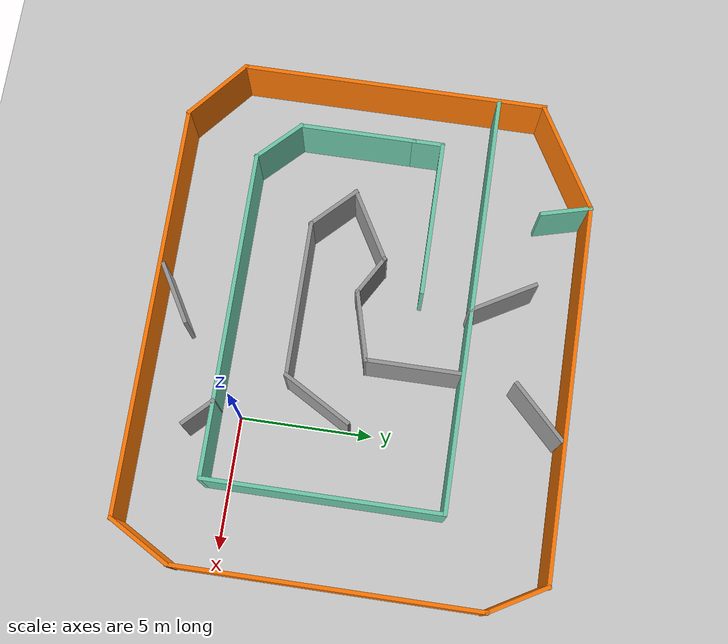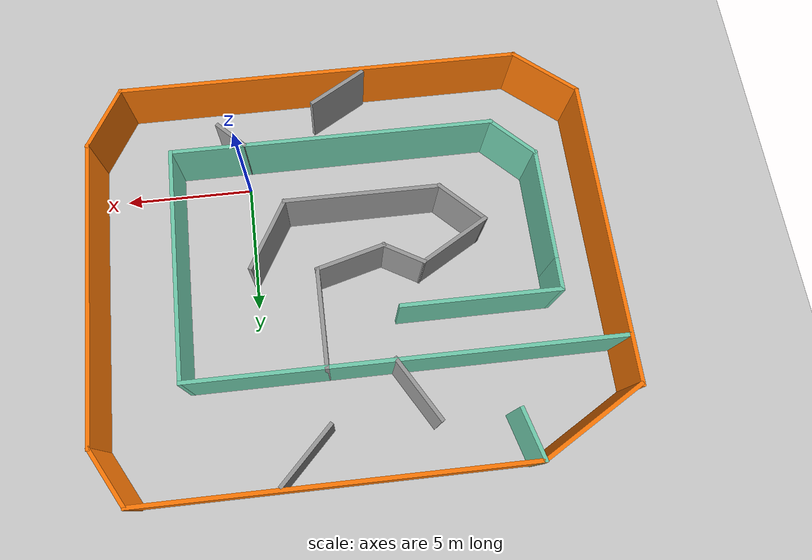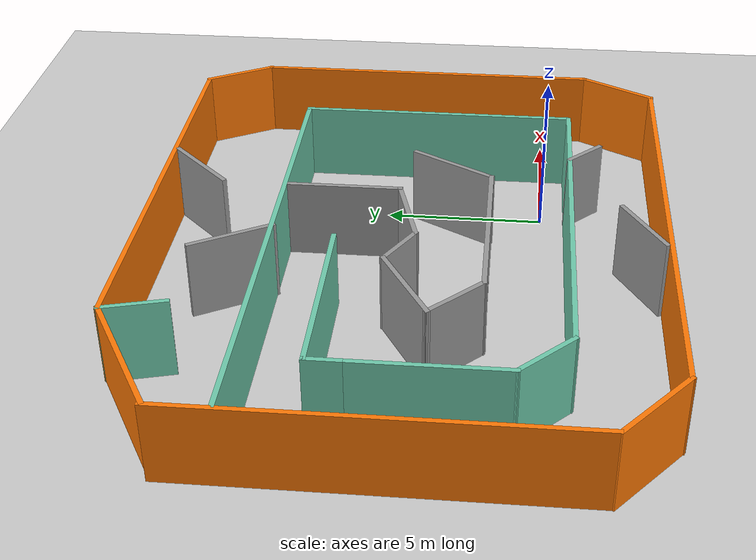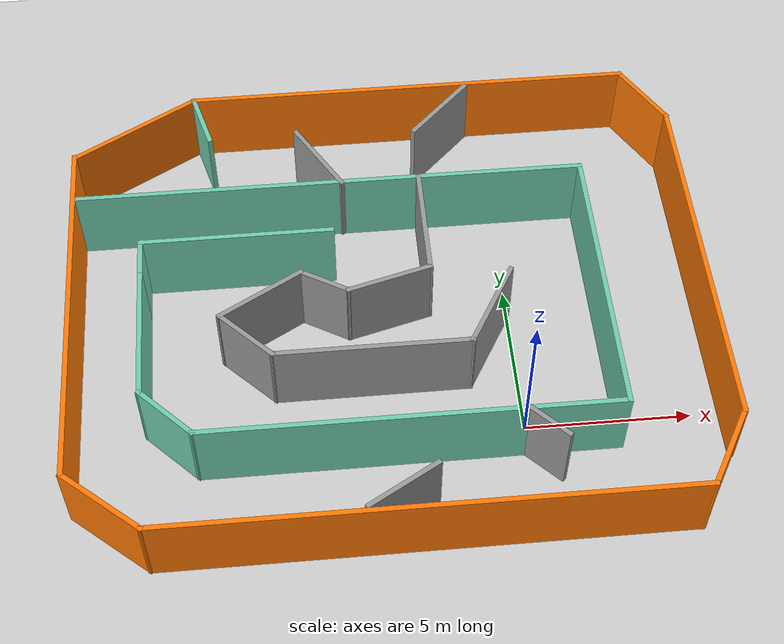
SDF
<sdf version="1.6">
 <world name="default">
  <light name="sun" type="directional">
   <pose>0 0 10 0 -0 0</pose>
   <diffuse>0.8 0.8 0.8 1</diffuse>
   <specular>0.1 0.1 0.1 1</specular>
   <attenuation>
    <range>1000</range>
    <constant>0.9</constant>
    <linear>0.01</linear>
    <quadratic>0.001</quadratic>
   </attenuation>
   <direction>-0.5 0.5 -1</direction>
  </light>
  <model name="ground_plane">
   <static>1</static>
   <link name="link">
    <collision name="collision">
     <geometry><plane><normal>0 0 1</normal><size>100 100</size></plane></geometry>
     <surface><friction><ode><mu>100</mu><mu2>50</mu2></ode></friction></surface>
    </collision>
    <visual name="visual">
     <cast_shadows>0</cast_shadows>
     <geometry><plane><normal>0 0 1</normal><size>100 100</size></plane></geometry>
     <material>
      <script><uri>file://media/materials/scripts/gazebo.material</uri><name>Gazebo/Grey</name></script>
     </material>
    </visual>
   </link>
  </model>
  <gravity>0 0 -9.8</gravity>
  <magnetic_field>6e-06 2.3e-05 -4.2e-05</magnetic_field>
  <atmosphere type="adiabatic"/>
  <physics name="default_physics" default="0" type="ode">
   <max_step_size>0.001</max_step_size>
   <real_time_factor>1</real_time_factor>
   <real_time_update_rate>1000</real_time_update_rate>
  </physics>
  <scene><ambient>0.4 0.4 0.4 1</ambient><background>0.7 0.7 0.7 1</background><shadows>1</shadows></scene>
  <spherical_coordinates>
   <surface_model>EARTH_WGS84</surface_model>
   <latitude_deg>0</latitude_deg>
   <longitude_deg>0</longitude_deg>
   <elevation>0</elevation>
   <heading_deg>0</heading_deg>
  </spherical_coordinates>
  <model name="my_world">
   <pose>-3.67629 4.11915 0 0 -0 0</pose>
   <link name="Wall_13">
    <collision name="Wall_13_Collision">
     <geometry><box><size>11.75 0.15 2.5</size></box></geometry>
     <pose>0 0 1.25 0 -0 0</pose>
    </collision>
    <visual name="Wall_13_Visual">
     <pose>0 0 1.25 0 -0 0</pose>
     <geometry><box><size>11.75 0.15 2.5</size></box></geometry>
     <material>
      <script><uri>file://media/materials/scripts/gazebo.material</uri><name>Gazebo/Grey</name></script>
      <ambient>0.996078 0.47451 0.0196078 1</ambient>
     </material>
    </visual>
    <pose>-9.5444 -0.125467 0 0 0 -1.5708</pose>
   </link>
   <link name="Wall_14">
    <collision name="Wall_14_Collision">
     <geometry><box><size>3.01519 0.15 2.5</size></box></geometry>
     <pose>0 0 1.25 0 -0 0</pose>
    </collision>
    <visual name="Wall_14_Visual">
     <pose>0 0 1.25 0 -0 0</pose>
     <geometry><box><size>3.01519 0.15 2.5</size></box></geometry>
     <material>
      <script><uri>file://media/materials/scripts/gazebo.material</uri><name>Gazebo/Grey</name></script>
      <ambient>0.996078 0.47451 0.0196078 1</ambient>
     </material>
    </visual>
    <pose>-8.44839 -6.89426 0 0 0 -0.699666</pose>
   </link>
   <link name="Wall_15">
    <collision name="Wall_15_Collision">
     <geometry><box><size>15.75 0.15 2.5</size></box></geometry>
     <pose>0 0 1.25 0 -0 0</pose>
    </collision>
    <visual name="Wall_15_Visual">
     <pose>0 0 1.25 0 -0 0</pose>
     <geometry><box><size>15.75 0.15 2.5</size></box></geometry>
     <material>
      <script><uri>file://media/materials/scripts/gazebo.material</uri><name>Gazebo/Grey</name></script>
      <ambient>0.996078 0.47451 0.0196078 1</ambient>
     </material>
    </visual>
    <pose>0.447627 -7.8168 0 0 -0 0</pose>
   </link>
   <link name="Wall_16">
    <collision name="Wall_16_Collision">
     <geometry><box><size>2.75 0.15 2.5</size></box></geometry>
     <pose>0 0 1.25 0 -0 0</pose>
    </collision>
    <visual name="Wall_16_Visual">
     <pose>0 0 1.25 0 -0 0</pose>
     <geometry><box><size>2.75 0.15 2.5</size></box></geometry>
     <material>
      <script><uri>file://media/materials/scripts/gazebo.material</uri><name>Gazebo/Grey</name></script>
      <ambient>0.996078 0.47451 0.0196078 1</ambient>
     </material>
    </visual>
    <pose>8.89763 -6.69097 0 0 -0 1.0472</pose>
   </link>
   <link name="Wall_17">
    <collision name="Wall_17_Collision">
     <geometry><box><size>11.5 0.15 2.5</size></box></geometry>
     <pose>0 0 1.25 0 -0 0</pose>
    </collision>
    <visual name="Wall_17_Visual">
     <pose>0 0 1.25 0 -0 0</pose>
     <geometry><box><size>11.5 0.15 2.5</size></box></geometry>
     <material>
      <script><uri>file://media/materials/scripts/gazebo.material</uri><name>Gazebo/Grey</name></script>
      <ambient>0.996078 0.47451 0.0196078 1</ambient>
     </material>
    </visual>
    <pose>9.54763 0.109865 0 0 -0 1.5708</pose>
   </link>
   <link name="Wall_18">
    <collision name="Wall_18_Collision">
     <geometry><box><size>2.5 0.15 2.5</size></box></geometry>
     <pose>0 0 1.25 0 -0 0</pose>
    </collision>
    <visual name="Wall_18_Visual">
     <pose>0 0 1.25 0 -0 0</pose>
     <geometry><box><size>2.5 0.15 2.5</size></box></geometry>
     <material>
      <script><uri>file://media/materials/scripts/gazebo.material</uri><name>Gazebo/Grey</name></script>
      <ambient>0.996078 0.47451 0.0196078 1</ambient>
     </material>
    </visual>
    <pose>8.96013 6.80244 0 0 -0 2.0944</pose>
   </link>
   <link name="Wall_19">
    <collision name="Wall_19_Collision">
     <geometry><box><size>14.25 0.15 2.5</size></box></geometry>
     <pose>0 0 1.25 0 -0 0</pose>
    </collision>
    <visual name="Wall_19_Visual">
     <pose>0 0 1.25 0 -0 0</pose>
     <geometry><box><size>14.25 0.15 2.5</size></box></geometry>
     <material>
      <script><uri>file://media/materials/scripts/gazebo.material</uri><name>Gazebo/Grey</name></script>
      <ambient>0.996078 0.47451 0.0196078 1</ambient>
     </material>
    </visual>
    <pose>1.32263 7.82003 0 0 -0 3.14159</pose>
   </link>
   <link name="Wall_20">
    <collision name="Wall_20_Collision">
     <geometry><box><size>4.5 0.15 2.5</size></box></geometry>
     <pose>0 0 1.25 0 -0 0</pose>
    </collision>
    <visual name="Wall_20_Visual">
     <pose>0 0 1.25 0 -0 0</pose>
     <geometry><box><size>4.5 0.15 2.5</size></box></geometry>
     <material>
      <script><uri>file://media/materials/scripts/gazebo.material</uri><name>Gazebo/Grey</name></script>
      <ambient>0.996078 0.47451 0.0196078 1</ambient>
     </material>
    </visual>
    <pose>-7.61098 6.73252 0 0 0 -2.61799</pose>
   </link>
   <link name="Wall_23">
    <collision name="Wall_23_Collision">
     <geometry><box><size>16 0.15 2.5</size></box></geometry>
     <pose>0 0 1.25 0 -0 0</pose>
    </collision>
    <visual name="Wall_23_Visual">
     <pose>0 0 1.25 0 -0 0</pose>
     <geometry><box><size>16 0.15 2.5</size></box></geometry>
     <material>
      <script><uri>file://media/materials/scripts/gazebo.material</uri><name>Gazebo/Grey</name></script>
      <ambient>0.435294 0.796078 0.67451 1</ambient>
     </material>
    </visual>
    <pose>-1.52751 3.89919 0 0 -0 0</pose>
   </link>
   <link name="Wall_24">
    <collision name="Wall_24_Collision">
     <geometry><box><size>9 0.15 2.5</size></box></geometry>
     <pose>0 0 1.25 0 -0 0</pose>
    </collision>
    <visual name="Wall_24_Visual">
     <pose>0 0 1.25 0 -0 0</pose>
     <geometry><box><size>9 0.15 2.5</size></box></geometry>
     <material>
      <script><uri>file://media/materials/scripts/gazebo.material</uri><name>Gazebo/Grey</name></script>
      <ambient>0.435294 0.796078 0.67451 1</ambient>
     </material>
    </visual>
    <pose>6.39749 -0.525806 0 0 0 -1.5708</pose>
   </link>
   <link name="Wall_25">
    <collision name="Wall_25_Collision">
     <geometry><box><size>12.5 0.15 2.5</size></box></geometry>
     <pose>0 0 1.25 0 -0 0</pose>
    </collision>
    <visual name="Wall_25_Visual">
     <pose>0 0 1.25 0 -0 0</pose>
     <geometry><box><size>12.5 0.15 2.5</size></box></geometry>
     <material>
      <script><uri>file://media/materials/scripts/gazebo.material</uri><name>Gazebo/Grey</name></script>
      <ambient>0.435294 0.796078 0.67451 1</ambient>
     </material>
    </visual>
    <pose>0.222495 -4.95081 0 0 -0 3.14159</pose>
   </link>
   <link name="Wall_26">
    <collision name="Wall_26_Collision">
     <geometry><box><size>2.25 0.15 2.5</size></box></geometry>
     <pose>0 0 1.25 0 -0 0</pose>
    </collision>
    <visual name="Wall_26_Visual">
     <pose>0 0 1.25 0 -0 0</pose>
     <geometry><box><size>2.25 0.15 2.5</size></box></geometry>
     <material>
      <script><uri>file://media/materials/scripts/gazebo.material</uri><name>Gazebo/Grey</name></script>
      <ambient>0.435294 0.796078 0.67451 1</ambient>
     </material>
    </visual>
    <pose>-6.69497 -4.20834 0 0 -0 2.35619</pose>
   </link>
   <link name="Wall_27">
    <collision name="Wall_27_Collision">
     <geometry><box><size>4.5 0.15 2.5</size></box></geometry>
     <pose>0 0 1.25 0 -0 0</pose>
    </collision>
    <visual name="Wall_27_Visual">
     <pose>0 0 1.25 0 -0 0</pose>
     <geometry><box><size>4.5 0.15 2.5</size></box></geometry>
     <material>
      <script><uri>file://media/materials/scripts/gazebo.material</uri><name>Gazebo/Grey</name></script>
      <ambient>0.435294 0.796078 0.67451 1</ambient>
     </material>
    </visual>
    <pose>-7.43743 -1.29088 0 0 -0 1.5708</pose>
   </link>
   <link name="Wall_28">
    <collision name="Wall_28_Collision">
     <geometry><box><size>1.25 0.15 2.5</size></box></geometry>
     <pose>0 0 1.25 0 -0 0</pose>
    </collision>
    <visual name="Wall_28_Visual">
     <pose>0 0 1.25 0 -0 0</pose>
     <geometry><box><size>1.25 0.15 2.5</size></box></geometry>
     <material>
      <script><uri>file://media/materials/scripts/gazebo.material</uri><name>Gazebo/Grey</name></script>
      <ambient>0.435294 0.796078 0.67451 1</ambient>
     </material>
    </visual>
    <pose>-7.43743 1.43412 0 0 -0 1.5708</pose>
   </link>
   <link name="Wall_29">
    <collision name="Wall_29_Collision">
     <geometry><box><size>6 0.15 2.5</size></box></geometry>
     <pose>0 0 1.25 0 -0 0</pose>
    </collision>
    <visual name="Wall_29_Visual">
     <pose>0 0 1.25 0 -0 0</pose>
     <geometry><box><size>6 0.15 2.5</size></box></geometry>
     <material>
      <script><uri>file://media/materials/scripts/gazebo.material</uri><name>Gazebo/Grey</name></script>
      <ambient>0.435294 0.796078 0.67451 1</ambient>
     </material>
    </visual>
    <pose>-4.51243 1.98412 0 0 -0 0</pose>
   </link>
   <link name="Wall_31">
    <collision name="Wall_31_Collision">
     <geometry><box><size>3.75 0.15 2.5</size></box></geometry>
     <pose>0 0 1.25 0 -0 0</pose>
    </collision>
    <visual name="Wall_31_Visual">
     <pose>0 0 1.25 0 -0 0</pose>
     <geometry><box><size>3.75 0.15 2.5</size></box></geometry>
     <material>
      <script><uri>file://media/materials/scripts/gazebo.material</uri><name>Gazebo/Grey</name></script>
      <ambient>1 1 1 1</ambient>
     </material>
    </visual>
    <pose>1.26822 2.09919 0 0 0 -1.5708</pose>
   </link>
   <link name="Wall_32">
    <collision name="Wall_32_Collision">
     <geometry><box><size>2.75 0.15 2.5</size></box></geometry>
     <pose>0 0 1.25 0 -0 0</pose>
    </collision>
    <visual name="Wall_32_Visual">
     <pose>0 0 1.25 0 -0 0</pose>
     <geometry><box><size>2.75 0.15 2.5</size></box></geometry>
     <material>
      <script><uri>file://media/materials/scripts/gazebo.material</uri><name>Gazebo/Grey</name></script>
      <ambient>1 1 1 1</ambient>
     </material>
    </visual>
    <pose>0.012519 -0.037271 0 0 0 -2.87979</pose>
   </link>
   <link name="Wall_33">
    <collision name="Wall_33_Collision">
     <geometry><box><size>1.75 0.15 2.5</size></box></geometry>
     <pose>0 0 1.25 0 -0 0</pose>
    </collision>
    <visual name="Wall_33_Visual">
     <pose>0 0 1.25 0 -0 0</pose>
     <geometry><box><size>1.75 0.15 2.5</size></box></geometry>
     <material>
      <script><uri>file://media/materials/scripts/gazebo.material</uri><name>Gazebo/Grey</name></script>
      <ambient>1 1 1 1</ambient>
     </material>
    </visual>
    <pose>-1.936 0.026264 0 0 -0 2.61799</pose>
   </link>
   <link name="Wall_34">
    <collision name="Wall_34_Collision">
     <geometry><box><size>3 0.15 2.5</size></box></geometry>
     <pose>0 0 1.25 0 -0 0</pose>
    </collision>
    <visual name="Wall_34_Visual">
     <pose>0 0 1.25 0 -0 0</pose>
     <geometry><box><size>3 0.15 2.5</size></box></geometry>
     <material>
      <script><uri>file://media/materials/scripts/gazebo.material</uri><name>Gazebo/Grey</name></script>
      <ambient>1 1 1 1</ambient>
     </material>
    </visual>
    <pose>-3.86291 -0.286236 0 0 0 -2.61799</pose>
   </link>
   <link name="Wall_35">
    <collision name="Wall_35_Collision">
     <geometry><box><size>2.25 0.15 2.5</size></box></geometry>
     <pose>0 0 1.25 0 -0 0</pose>
    </collision>
    <visual name="Wall_35_Visual">
     <pose>0 0 1.25 0 -0 0</pose>
     <geometry><box><size>2.25 0.15 2.5</size></box></geometry>
     <material>
      <script><uri>file://media/materials/scripts/gazebo.material</uri><name>Gazebo/Grey</name></script>
      <ambient>1 1 1 1</ambient>
     </material>
    </visual>
    <pose>-4.35454 -1.7412 0 0 0 -0.785398</pose>
   </link>
   <link name="Wall_36">
    <collision name="Wall_36_Collision">
     <geometry><box><size>6 0.15 2.5</size></box></geometry>
     <pose>0 0 1.25 0 -0 0</pose>
    </collision>
    <visual name="Wall_36_Visual">
     <pose>0 0 1.25 0 -0 0</pose>
     <geometry><box><size>6 0.15 2.5</size></box></geometry>
     <material>
      <script><uri>file://media/materials/scripts/gazebo.material</uri><name>Gazebo/Grey</name></script>
      <ambient>1 1 1 1</ambient>
     </material>
    </visual>
    <pose>-0.687073 -2.48366 0 0 -0 0</pose>
   </link>
   <link name="Wall_37">
    <collision name="Wall_37_Collision">
     <geometry><box><size>3 0.15 2.5</size></box></geometry>
     <pose>0 0 1.25 0 -0 0</pose>
    </collision>
    <visual name="Wall_37_Visual">
     <pose>0 0 1.25 0 -0 0</pose>
     <geometry><box><size>3 0.15 2.5</size></box></geometry>
     <material>
      <script><uri>file://media/materials/scripts/gazebo.material</uri><name>Gazebo/Grey</name></script>
      <ambient>1 1 1 1</ambient>
     </material>
    </visual>
    <pose>2.95043 -1.24957 0 0 -0 1.0472</pose>
   </link>
   <link name="Wall_39">
    <collision name="Wall_39_Collision">
     <geometry><box><size>2 0.15 2.5</size></box></geometry>
     <pose>0 0 1.25 0 -0 0</pose>
    </collision>
    <visual name="Wall_39_Visual">
     <pose>0 0 1.25 0 -0 0</pose>
     <geometry><box><size>2 0.15 2.5</size></box></geometry>
     <material>
      <script><uri>file://media/materials/scripts/gazebo.material</uri><name>Gazebo/Grey</name></script>
      <ambient>0.435294 0.796078 0.67451 1</ambient>
     </material>
    </visual>
    <pose>-5.48796 6.92654 0 0 0 -1.309</pose>
   </link>
   <link name="Wall_41">
    <collision name="Wall_41_Collision">
     <geometry><box><size>2.75 0.15 2.5</size></box></geometry>
     <pose>0 0 1.25 0 -0 0</pose>
    </collision>
    <visual name="Wall_41_Visual">
     <pose>0 0 1.25 0 -0 0</pose>
     <geometry><box><size>2.75 0.15 2.5</size></box></geometry>
     <material>
      <script><uri>file://media/materials/scripts/gazebo.material</uri><name>Gazebo/Grey</name></script>
      <ambient>1 1 1 1</ambient>
     </material>
    </visual>
    <pose>-1.80911 4.98457 0 0 -0 2.0944</pose>
   </link>
   <link name="Wall_43">
    <collision name="Wall_43_Collision">
     <geometry><box><size>2.75 0.15 2.5</size></box></geometry>
     <pose>0 0 1.25 0 -0 0</pose>
    </collision>
    <visual name="Wall_43_Visual">
     <pose>0 0 1.25 0 -0 0</pose>
     <geometry><box><size>2.75 0.15 2.5</size></box></geometry>
     <material>
      <script><uri>file://media/materials/scripts/gazebo.material</uri><name>Gazebo/Grey</name></script>
      <ambient>1 1 1 1</ambient>
     </material>
    </visual>
    <pose>2.2504 6.78278 0 0 0 -2.35619</pose>
   </link>
   <link name="Wall_45">
    <collision name="Wall_45_Collision">
     <geometry><box><size>1.5 0.15 2.5</size></box></geometry>
     <pose>0 0 1.25 0 -0 0</pose>
    </collision>
    <visual name="Wall_45_Visual">
     <pose>0 0 1.25 0 -0 0</pose>
     <geometry><box><size>1.5 0.15 2.5</size></box></geometry>
     <material>
      <script><uri>file://media/materials/scripts/gazebo.material</uri><name>Gazebo/Grey</name></script>
      <ambient>1 1 1 1</ambient>
     </material>
    </visual>
    <pose>4.05149 -5.43788 0 0 0 -0.785398</pose>
   </link>
   <link name="Wall_47">
    <collision name="Wall_47_Collision">
     <geometry><box><size>2.5 0.15 2.5</size></box></geometry>
     <pose>0 0 1.25 0 -0 0</pose>
    </collision>
    <visual name="Wall_47_Visual">
     <pose>0 0 1.25 0 -0 0</pose>
     <geometry><box><size>2.5 0.15 2.5</size></box></geometry>
     <material>
      <script><uri>file://media/materials/scripts/gazebo.material</uri><name>Gazebo/Grey</name></script>
      <ambient>1 1 1 1</ambient>
     </material>
    </visual>
    <pose>-0.222443 -7.0836 0 0 -0 0.523599</pose>
   </link>
   <static>1</static>
  </model>
 </world>
</sdf>
